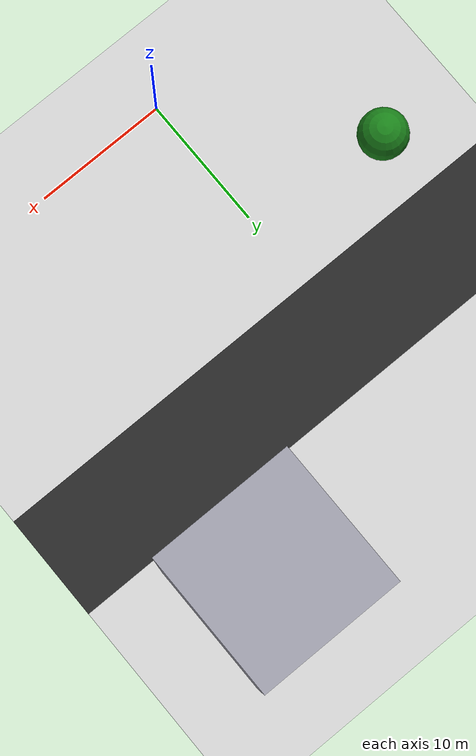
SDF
<sdf version="1.9">
 <world name="mission_world">
  <physics type="ode">
   <max_step_size>0.004</max_step_size>
   <real_time_factor>1.0</real_time_factor>
   <real_time_update_rate>250</real_time_update_rate>
  </physics>
  <gravity>0 0 -9.8</gravity>
  <magnetic_field>6e-06 2.3e-05 -4.2e-05</magnetic_field>
  <atmosphere type="adiabatic"/>
  <scene>
   <grid>false</grid>
   <ambient>0.4 0.4 0.4 1</ambient>
   <background>0.7 0.7 0.7 1</background>
   <shadows>true</shadows>
  </scene>
  <model name="ground_plane">
   <static>true</static>
   <link name="link">
    <collision name="collision">
     <geometry><plane><normal>0 0 1</normal><size>1 1</size></plane></geometry>
    </collision>
    <visual name="visual">
     <geometry><plane><normal>0 0 1</normal><size>500 500</size></plane></geometry>
     <material>
      <ambient>0.8 0.8 0.8 1</ambient>
      <diffuse>0.8 0.8 0.8 1</diffuse>
      <specular>0.8 0.8 0.8 1</specular>
     </material>
    </visual>
    <inertial>
     <mass>1</mass>
     <inertia><ixx>1</ixx><ixy>0</ixy><ixz>0</ixz><iyy>1</iyy><iyz>0</iyz><izz>1</izz></inertia>
    </inertial>
   </link>
  </model>
  <light name="sunUTC" type="directional">
   <pose>0 0 500 0 -0 0</pose>
   <intensity>1</intensity>
   <direction>0.001 0.625 -0.78</direction>
   <diffuse>0.904 0.904 0.904 1</diffuse>
   <specular>0.271 0.271 0.271 1</specular>
   <attenuation><range>2000</range><linear>0</linear><constant>1</constant><quadratic>0</quadratic></attenuation>
   <spot><inner_angle>0</inner_angle><outer_angle>0</outer_angle><falloff>0</falloff></spot>
  </light>
  <spherical_coordinates>
   <surface_model>EARTH_WGS84</surface_model>
   <world_frame_orientation>ENU</world_frame_orientation>
   <latitude_deg>47.397971057728974</latitude_deg>
   <longitude_deg>8.546163739800146</longitude_deg>
   <elevation>488</elevation>
  </spherical_coordinates>
  <model name="road_1">
   <static>true</static>
   <pose>0 20 0.01 0 0 0</pose>
   <link name="link">
    <visual name="visual">
     <geometry><box><size>100 8 0.02</size></box></geometry>
     <material><ambient>0.15 0.15 0.15 1</ambient><diffuse>0.15 0.15 0.15 1</diffuse></material>
    </visual>
   </link>
  </model>
  <model name="building_1">
   <static>true</static>
   <pose>15 30 10 0 0 0</pose>
   <link name="link">
    <collision name="collision"><geometry><box><size>10 10 20</size></box></geometry></collision>
    <visual name="visual">
     <geometry><box><size>10 10 20</size></box></geometry>
     <material><ambient>0.6 0.6 0.65 1</ambient><diffuse>0.6 0.6 0.65 1</diffuse></material>
    </visual>
   </link>
  </model>
  <model name="tree_1">
   <static>true</static>
   <pose>-10 12 0 0 0 0</pose>
   <link name="link">
    <visual name="trunk">
     <pose>0 0 1.5 0 0 0</pose>
     <geometry><cylinder><radius>0.3</radius><length>3</length></cylinder></geometry>
     <material><ambient>0.4 0.25 0.1 1</ambient><diffuse>0.4 0.25 0.1 1</diffuse></material>
    </visual>
    <visual name="leaves">
     <pose>0 0 4 0 0 0</pose>
     <geometry><sphere><radius>1.8</radius></sphere></geometry>
     <material><ambient>0.1 0.5 0.1 1</ambient><diffuse>0.1 0.5 0.1 1</diffuse></material>
    </visual>
   </link>
  </model>
 </world>
</sdf>
